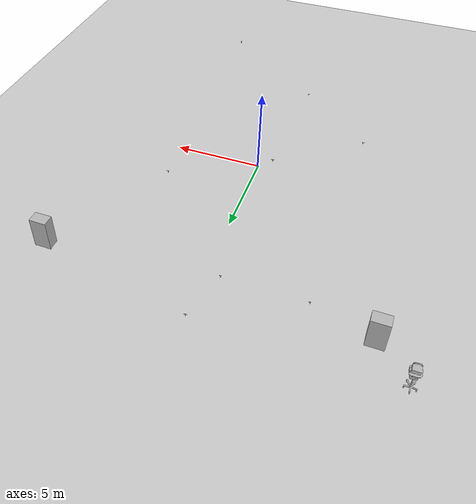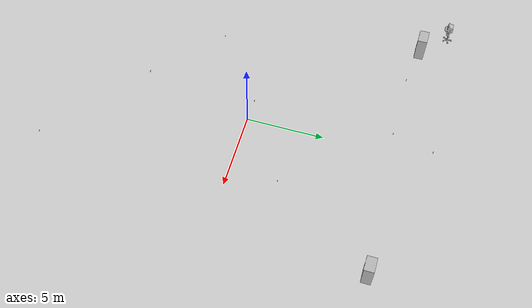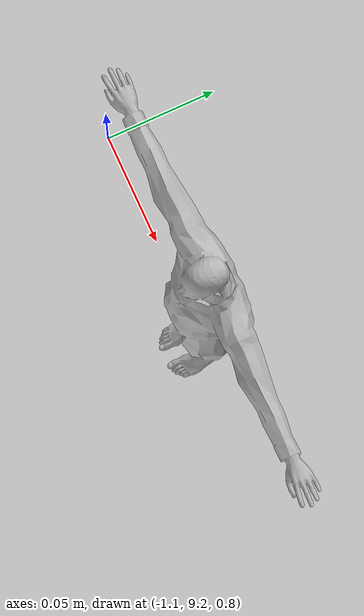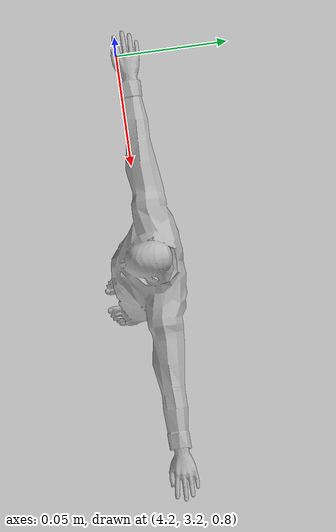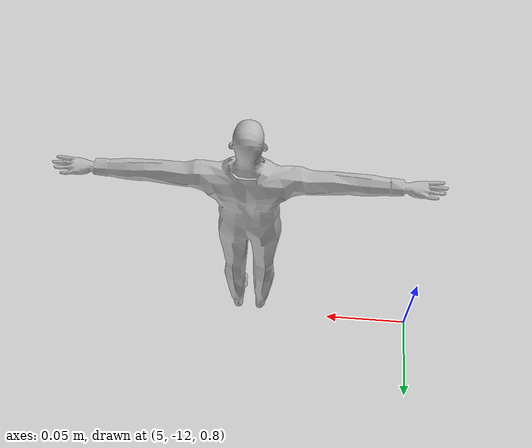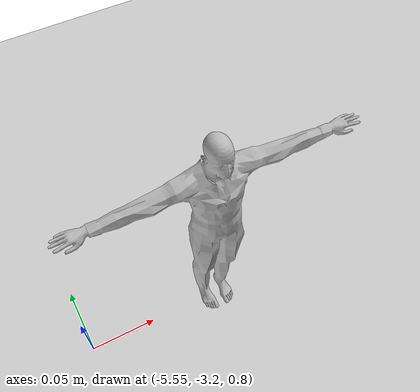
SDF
<sdf version="1.6">
 <world name="hospital_sector_north">
  <gravity>0 0 -9.8</gravity>
  <physics default="0" name="default_physics" type="ode">
   <max_step_size>0.01</max_step_size>
   <real_time_factor>1</real_time_factor>
   <real_time_update_rate>100</real_time_update_rate>
  </physics>
  <scene><ambient>0.6 0.6 0.6 1</ambient><background>0.4 0.4 0.4 1</background><shadows>false</shadows></scene>
  <model name="ground_plane_large">
   <static>true</static>
   <pose>0 0 -0.1 0 0 0</pose>
   <link name="link">
    <collision name="collision">
     <geometry><plane><normal>0 0 1</normal><size>1000 1000</size></plane></geometry>
    </collision>
    <visual name="visual">
     <geometry><plane><normal>0 0 1</normal><size>1000 1000</size></plane></geometry>
    </visual>
   </link>
  </model>
  <model name="BPCart_1">
   <include>
    <uri>model://BPCart</uri>
    <static>true</static>
    <pose>-10.1788 11.173 0.003446 1e-06 -0 0.003096</pose>
   </include>
  </model>
  <model name="VendingMachine_1">
   <include>
    <uri>model://VendingMachine</uri>
    <static>true</static>
    <pose>-8.45694 9.63064 0 0 -0 0</pose>
   </include>
  </model>
  <model name="VendingMachine_2">
   <include>
    <uri>model://VendingMachine</uri>
    <static>true</static>
    <pose>8.35378 9.64852 -3e-06 -6e-06 0 0</pose>
   </include>
  </model>
  <model name="patient_north_1">
   <pose>-0.3 11.8 0 0 0 0</pose>
   <static>false</static>
   <link name="link">
    <inertial>
     <mass>5.0</mass>
     <inertia><ixx>0.1</ixx><ixy>0</ixy><ixz>0</ixz><iyy>0.1</iyy><iyz>0</iyz><izz>0.1</izz></inertia>
    </inertial>
    <collision name="collision">
     <geometry><box><size>0.5 0.5 1.8</size></box></geometry>
     <pose>0 0 0.9 0 0 0</pose>
    </collision>
    <visual name="visual">
     <pose>0 0 0.9 0 0 0</pose>
     <geometry>
      <mesh><uri>/usr/share/gazebo-11/media/models/stand.dae</uri><scale>1.0 1.0 1.0</scale></mesh>
     </geometry>
    </visual>
   </link>
   <plugin name="patient_north_1_planar_move" filename="libgazebo_ros_planar_move.so">
    <ros><namespace>patient_north_1</namespace></ros>
    <update_rate>50</update_rate>
    <publish_odom>false</publish_odom>
    <publish_odom_tf>false</publish_odom_tf>
   </plugin>
  </model>
  <model name="patient_north_2">
   <pose>-1.0 9.2 0 0 0 0</pose>
   <static>false</static>
   <link name="link">
    <inertial>
     <mass>5.0</mass>
     <inertia><ixx>0.1</ixx><ixy>0</ixy><ixz>0</ixz><iyy>0.1</iyy><iyz>0</iyz><izz>0.1</izz></inertia>
    </inertial>
    <collision name="collision">
     <geometry><box><size>0.5 0.5 1.8</size></box></geometry>
     <pose>0 0 0.9 0 0 0</pose>
    </collision>
    <visual name="visual">
     <pose>0 0 0.9 0 0 0</pose>
     <geometry>
      <mesh><uri>/usr/share/gazebo-11/media/models/stand.dae</uri><scale>1.0 1.0 1.0</scale></mesh>
     </geometry>
    </visual>
   </link>
   <plugin name="patient_north_2_planar_move" filename="libgazebo_ros_planar_move.so">
    <ros><namespace>patient_north_2</namespace></ros>
    <update_rate>50</update_rate>
    <publish_odom>false</publish_odom>
    <publish_odom_tf>false</publish_odom_tf>
   </plugin>
  </model>
  <model name="patient_north_3">
   <pose>-5.31 9.2 0 0 0 0</pose>
   <static>false</static>
   <link name="link">
    <inertial>
     <mass>5.0</mass>
     <inertia><ixx>0.1</ixx><ixy>0</ixy><ixz>0</ixz><iyy>0.1</iyy><iyz>0</iyz><izz>0.1</izz></inertia>
    </inertial>
    <collision name="collision">
     <geometry><box><size>0.5 0.5 1.8</size></box></geometry>
     <pose>0 0 0.9 0 0 0</pose>
    </collision>
    <visual name="visual">
     <pose>0 0 0.9 0 0 0</pose>
     <geometry>
      <mesh><uri>/usr/share/gazebo-11/media/models/stand.dae</uri><scale>1.0 1.0 1.0</scale></mesh>
     </geometry>
    </visual>
   </link>
   <plugin name="patient_north_3_planar_move" filename="libgazebo_ros_planar_move.so">
    <ros><namespace>patient_north_3</namespace></ros>
    <update_rate>50</update_rate>
    <publish_odom>false</publish_odom>
    <publish_odom_tf>false</publish_odom_tf>
   </plugin>
  </model>
  <model name="patient_north_4">
   <pose>4.31 3.2 0 0 0 0</pose>
   <static>false</static>
   <link name="link">
    <inertial>
     <mass>5.0</mass>
     <inertia><ixx>0.1</ixx><ixy>0</ixy><ixz>0</ixz><iyy>0.1</iyy><iyz>0</iyz><izz>0.1</izz></inertia>
    </inertial>
    <collision name="collision">
     <geometry><box><size>0.5 0.5 1.8</size></box></geometry>
     <pose>0 0 0.9 0 0 0</pose>
    </collision>
    <visual name="visual">
     <pose>0 0 0.9 0 0 0</pose>
     <geometry>
      <mesh><uri>/usr/share/gazebo-11/media/models/stand.dae</uri><scale>1.0 1.0 1.0</scale></mesh>
     </geometry>
    </visual>
   </link>
   <plugin name="patient_north_4_planar_move" filename="libgazebo_ros_planar_move.so">
    <ros><namespace>patient_north_4</namespace></ros>
    <update_rate>50</update_rate>
    <publish_odom>false</publish_odom>
    <publish_odom_tf>false</publish_odom_tf>
   </plugin>
  </model>
  <model name="patient_north_5">
   <pose>-0.9 0.2 0 0 0 0</pose>
   <static>false</static>
   <link name="link">
    <inertial>
     <mass>5.0</mass>
     <inertia><ixx>0.1</ixx><ixy>0</ixy><ixz>0</ixz><iyy>0.1</iyy><iyz>0</iyz><izz>0.1</izz></inertia>
    </inertial>
    <collision name="collision">
     <geometry><box><size>0.5 0.5 1.8</size></box></geometry>
     <pose>0 0 0.9 0 0 0</pose>
    </collision>
    <visual name="visual">
     <pose>0 0 0.9 0 0 0</pose>
     <geometry>
      <mesh><uri>/usr/share/gazebo-11/media/models/stand.dae</uri><scale>1.0 1.0 1.0</scale></mesh>
     </geometry>
    </visual>
   </link>
   <plugin name="patient_north_5_planar_move" filename="libgazebo_ros_planar_move.so">
    <ros><namespace>patient_north_5</namespace></ros>
    <update_rate>50</update_rate>
    <publish_odom>false</publish_odom>
    <publish_odom_tf>false</publish_odom_tf>
   </plugin>
  </model>
  <model name="patient_north_6">
   <pose>-5.45 -3.2 0 0 0 0</pose>
   <static>false</static>
   <link name="link">
    <inertial>
     <mass>5.0</mass>
     <inertia><ixx>0.1</ixx><ixy>0</ixy><ixz>0</ixz><iyy>0.1</iyy><iyz>0</iyz><izz>0.1</izz></inertia>
    </inertial>
    <collision name="collision">
     <geometry><box><size>0.5 0.5 1.8</size></box></geometry>
     <pose>0 0 0.9 0 0 0</pose>
    </collision>
    <visual name="visual">
     <pose>0 0 0.9 0 0 0</pose>
     <geometry>
      <mesh><uri>/usr/share/gazebo-11/media/models/stand.dae</uri><scale>1.0 1.0 1.0</scale></mesh>
     </geometry>
    </visual>
   </link>
   <plugin name="patient_north_6_planar_move" filename="libgazebo_ros_planar_move.so">
    <ros><namespace>patient_north_6</namespace></ros>
    <update_rate>50</update_rate>
    <publish_odom>false</publish_odom>
    <publish_odom_tf>false</publish_odom_tf>
   </plugin>
  </model>
  <model name="patient_north_7">
   <pose>-1.2 -7.0 0 0 0 0</pose>
   <static>false</static>
   <link name="link">
    <inertial>
     <mass>5.0</mass>
     <inertia><ixx>0.1</ixx><ixy>0</ixy><ixz>0</ixz><iyy>0.1</iyy><iyz>0</iyz><izz>0.1</izz></inertia>
    </inertial>
    <collision name="collision">
     <geometry><box><size>0.5 0.5 1.8</size></box></geometry>
     <pose>0 0 0.9 0 0 0</pose>
    </collision>
    <visual name="visual">
     <pose>0 0 0.9 0 0 0</pose>
     <geometry>
      <mesh><uri>/usr/share/gazebo-11/media/models/stand.dae</uri><scale>1.0 1.0 1.0</scale></mesh>
     </geometry>
    </visual>
   </link>
   <plugin name="patient_north_7_planar_move" filename="libgazebo_ros_planar_move.so">
    <ros><namespace>patient_north_7</namespace></ros>
    <update_rate>50</update_rate>
    <publish_odom>false</publish_odom>
    <publish_odom_tf>false</publish_odom_tf>
   </plugin>
  </model>
  <model name="patient_north_8">
   <pose>5.1 -12.0 0 0 0 0</pose>
   <static>false</static>
   <link name="link">
    <inertial>
     <mass>5.0</mass>
     <inertia><ixx>0.1</ixx><ixy>0</ixy><ixz>0</ixz><iyy>0.1</iyy><iyz>0</iyz><izz>0.1</izz></inertia>
    </inertial>
    <collision name="collision">
     <geometry><box><size>0.5 0.5 1.8</size></box></geometry>
     <pose>0 0 0.9 0 0 0</pose>
    </collision>
    <visual name="visual">
     <pose>0 0 0.9 0 0 0</pose>
     <geometry>
      <mesh><uri>/usr/share/gazebo-11/media/models/stand.dae</uri><scale>1.0 1.0 1.0</scale></mesh>
     </geometry>
    </visual>
   </link>
   <plugin name="patient_north_8_planar_move" filename="libgazebo_ros_planar_move.so">
    <ros><namespace>patient_north_8</namespace></ros>
    <update_rate>50</update_rate>
    <publish_odom>false</publish_odom>
    <publish_odom_tf>false</publish_odom_tf>
   </plugin>
  </model>
 </world>
</sdf>

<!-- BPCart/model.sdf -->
<sdf version="1.6">
  <model name='BPCart'>
    <link name="body">
      <pose>0 0 0 0 0 0</pose>

      <visual name="visual">
        <geometry>
          <mesh>
            <uri>model://BPCart/meshes/Cart_BP.obj</uri>
          </mesh>
        </geometry>
      </visual>

      <collision name="collision">
        <geometry>
          <mesh>
            <uri>model://BPCart/meshes/Cart_BP_Col.obj</uri>
          </mesh>
        </geometry>
      </collision>

    </link>
  </model>
</sdf>

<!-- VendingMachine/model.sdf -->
<sdf version="1.6">
  <model name="VendingMachine">
    <link name="body">
      <pose>0 0 0 0 0 0</pose>

      <visual name="visual">
        <geometry>
          <mesh>
            <uri>model://VendingMachine/meshes/vend.obj</uri>
          </mesh>
        </geometry>
      </visual>

      <collision name="collision">
        <geometry>
          <mesh>
            <uri>model://VendingMachine/meshes/vend.obj</uri>
          </mesh>
        </geometry>
      </collision>

    </link>
  </model>
</sdf>
